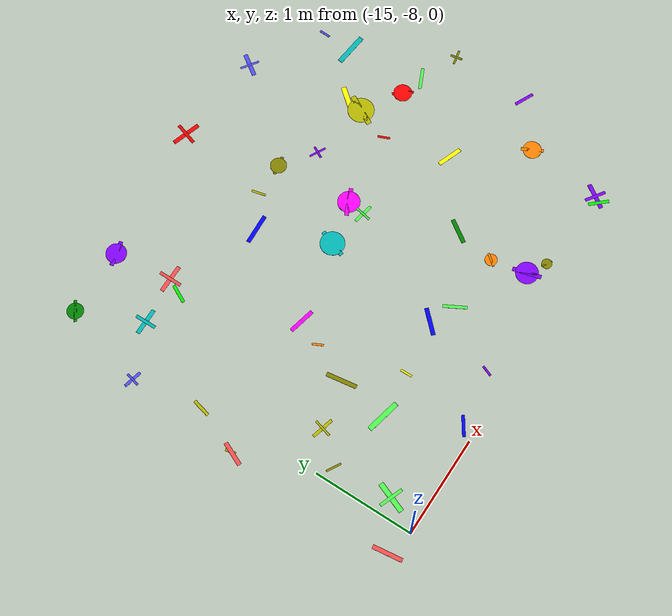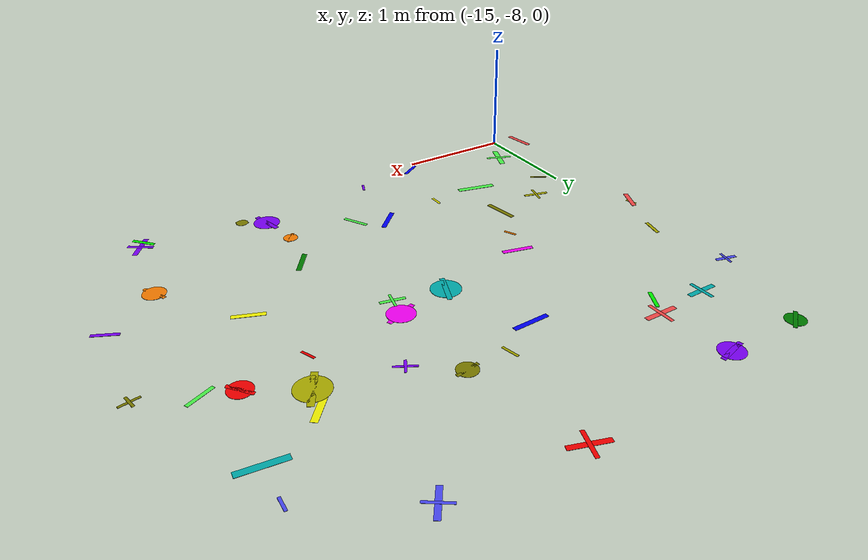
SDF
<sdf version="1.6">
 <world name="default">
  <model name="letter_E_31">
   <static>true</static>
   <pose>-14.82 -7.68 0.005 0 0 1.197</pose>
   <link name="link">
    <visual name="visual">
     <geometry><box><size>0.31 0.05 0.002</size></box></geometry>
     <material>
      <ambient>0.3 1.0 0.3 1</ambient>
      <diffuse>0.3 1.0 0.3 1</diffuse>
      <specular>0.1 0.1 0.1 1</specular>
     </material>
    </visual>
    <visual name="visual2">
     <pose>0 0 0.001 0 0 1.57</pose>
     <geometry><box><size>0.24 0.03 0.001</size></box></geometry>
     <material><ambient>0.3 1.0 0.3 1</ambient><diffuse>0.3 1.0 0.3 1</diffuse></material>
    </visual>
   </link>
  </model>
  <model name="letter_N_33">
   <static>true</static>
   <pose>-15.26 -7.92 0.006 0 0 4.839</pose>
   <link name="link">
    <visual name="visual">
     <geometry><box><size>0.29 0.04 0.002</size></box></geometry>
     <material>
      <ambient>1.0 0.3 0.3 1</ambient>
      <diffuse>1.0 0.3 0.3 1</diffuse>
      <specular>0.1 0.1 0.1 1</specular>
     </material>
    </visual>
   </link>
  </model>
  <model name="letter_F_34">
   <static>true</static>
   <pose>-14.62 -6.82 0.006 0 0 2.882</pose>
   <link name="link">
    <visual name="visual">
     <geometry><box><size>0.22 0.03 0.002</size></box></geometry>
     <material>
      <ambient>0.7 0.7 0.0 1</ambient>
      <diffuse>0.7 0.7 0.0 1</diffuse>
      <specular>0.1 0.1 0.1 1</specular>
     </material>
    </visual>
    <visual name="visual2">
     <pose>0 0 0.001 0 0 1.57</pose>
     <geometry><box><size>0.18 0.02 0.001</size></box></geometry>
     <material><ambient>0.7 0.7 0.0 1</ambient><diffuse>0.7 0.7 0.0 1</diffuse></material>
    </visual>
   </link>
  </model>
  <model name="letter_V_35">
   <static>true</static>
   <pose>-14.87 -7.10 0.007 0 0 5.749</pose>
   <link name="link">
    <visual name="visual">
     <geometry><box><size>0.15 0.02 0.002</size></box></geometry>
     <material>
      <ambient>0.5 0.5 0.0 1</ambient>
      <diffuse>0.5 0.5 0.0 1</diffuse>
      <specular>0.1 0.1 0.1 1</specular>
     </material>
    </visual>
   </link>
  </model>
  <model name="letter_Z_36">
   <static>true</static>
   <pose>-15.25 -6.24 0.005 0 0 1.819</pose>
   <link name="link">
    <visual name="visual">
     <geometry><box><size>0.10 0.02 0.002</size></box></geometry>
     <material>
      <ambient>0.7 0.7 0.0 1</ambient>
      <diffuse>0.7 0.7 0.0 1</diffuse>
      <specular>0.1 0.1 0.1 1</specular>
     </material>
    </visual>
   </link>
  </model>
  <model name="letter_U_37">
   <static>true</static>
   <pose>-15.26 -6.27 0.011 0 0 4.283</pose>
   <link name="link">
    <visual name="visual">
     <geometry><box><size>0.24 0.04 0.002</size></box></geometry>
     <material>
      <ambient>1.0 0.3 0.3 1</ambient>
      <diffuse>1.0 0.3 0.3 1</diffuse>
      <specular>0.1 0.1 0.1 1</specular>
     </material>
    </visual>
   </link>
  </model>
  <model name="letter_P_38">
   <static>true</static>
   <pose>-15.06 -5.79 0.004 0 0 1.325</pose>
   <link name="link">
    <visual name="visual">
     <geometry><box><size>0.18 0.03 0.002</size></box></geometry>
     <material>
      <ambient>0.7 0.7 0.0 1</ambient>
      <diffuse>0.7 0.7 0.0 1</diffuse>
      <specular>0.1 0.1 0.1 1</specular>
     </material>
    </visual>
   </link>
  </model>
  <model name="letter_L_39">
   <static>true</static>
   <pose>-15.18 -5.11 0.009 0 0 2.905</pose>
   <link name="link">
    <visual name="visual">
     <geometry><box><size>0.18 0.03 0.002</size></box></geometry>
     <material>
      <ambient>0.3 0.3 1.0 1</ambient>
      <diffuse>0.3 0.3 1.0 1</diffuse>
      <specular>0.1 0.1 0.1 1</specular>
     </material>
    </visual>
    <visual name="visual2">
     <pose>0 0 0.001 0 0 1.57</pose>
     <geometry><box><size>0.14 0.02 0.001</size></box></geometry>
     <material><ambient>0.3 0.3 1.0 1</ambient><diffuse>0.3 0.3 1.0 1</diffuse></material>
    </visual>
   </link>
  </model>
  <model name="letter_A_40">
   <static>true</static>
   <pose>-14.66 -4.89 0.006 0 0 0.012</pose>
   <link name="link">
    <visual name="visual">
     <geometry><box><size>0.26 0.04 0.002</size></box></geometry>
     <material>
      <ambient>0.0 0.7 0.7 1</ambient>
      <diffuse>0.0 0.7 0.7 1</diffuse>
      <specular>0.1 0.1 0.1 1</specular>
     </material>
    </visual>
    <visual name="visual2">
     <pose>0 0 0.001 0 0 1.57</pose>
     <geometry><box><size>0.21 0.03 0.001</size></box></geometry>
     <material><ambient>0.0 0.7 0.7 1</ambient><diffuse>0.0 0.7 0.7 1</diffuse></material>
    </visual>
   </link>
  </model>
  <model name="letter_Q_43">
   <static>true</static>
   <pose>-14.93 -4.28 0.006 0 0 0.631</pose>
   <link name="link">
    <visual name="visual">
     <geometry><box><size>0.21 0.03 0.002</size></box></geometry>
     <material>
      <ambient>0.0 0.5 0.0 1</ambient>
      <diffuse>0.0 0.5 0.0 1</diffuse>
      <specular>0.1 0.1 0.1 1</specular>
     </material>
    </visual>
    <visual name="visual2">
     <geometry><cylinder><radius>0.08</radius><length>0.002</length></cylinder></geometry>
     <material><ambient>0.0 0.5 0.0 1</ambient><diffuse>0.0 0.5 0.0 1</diffuse></material>
    </visual>
   </link>
  </model>
  <model name="letter_W_111">
   <static>true</static>
   <pose>-13.91 -7.88 0.012 0 0 3.731</pose>
   <link name="link">
    <visual name="visual">
     <geometry><box><size>0.20 0.03 0.002</size></box></geometry>
     <material>
      <ambient>0.0 0.0 1.0 1</ambient>
      <diffuse>0.0 0.0 1.0 1</diffuse>
      <specular>0.1 0.1 0.1 1</specular>
     </material>
    </visual>
   </link>
  </model>
  <model name="letter_M_113">
   <static>true</static>
   <pose>-14.15 -6.72 0.009 0 0 4.860</pose>
   <link name="link">
    <visual name="visual">
     <geometry><box><size>0.30 0.04 0.002</size></box></geometry>
     <material>
      <ambient>0.5 0.5 0.0 1</ambient>
      <diffuse>0.5 0.5 0.0 1</diffuse>
      <specular>0.1 0.1 0.1 1</specular>
     </material>
    </visual>
   </link>
  </model>
  <model name="letter_S_114">
   <static>true</static>
   <pose>-14.23 -7.22 0.008 0 0 2.916</pose>
   <link name="link">
    <visual name="visual">
     <geometry><box><size>0.34 0.05 0.002</size></box></geometry>
     <material>
      <ambient>0.3 1.0 0.3 1</ambient>
      <diffuse>0.3 1.0 0.3 1</diffuse>
      <specular>0.1 0.1 0.1 1</specular>
     </material>
    </visual>
   </link>
  </model>
  <model name="letter_D_115">
   <static>true</static>
   <pose>-13.77 -7.18 0.012 0 0 4.732</pose>
   <link name="link">
    <visual name="visual">
     <geometry><box><size>0.12 0.02 0.002</size></box></geometry>
     <material>
      <ambient>1.0 1.0 0.0 1</ambient>
      <diffuse>1.0 1.0 0.0 1</diffuse>
      <specular>0.1 0.1 0.1 1</specular>
     </material>
    </visual>
   </link>
  </model>
  <model name="letter_K_116">
   <static>true</static>
   <pose>-13.98 -6.35 0.010 0 0 5.159</pose>
   <link name="link">
    <visual name="visual">
     <geometry><box><size>0.11 0.02 0.002</size></box></geometry>
     <material>
      <ambient>1.0 0.5 0.0 1</ambient>
      <diffuse>1.0 0.5 0.0 1</diffuse>
      <specular>0.1 0.1 0.1 1</specular>
     </material>
    </visual>
   </link>
  </model>
  <model name="letter_Z_117">
   <static>true</static>
   <pose>-13.87 -6.10 0.005 0 0 2.912</pose>
   <link name="link">
    <visual name="visual">
     <geometry><box><size>0.26 0.04 0.002</size></box></geometry>
     <material>
      <ambient>1.0 0.0 1.0 1</ambient>
      <diffuse>1.0 0.0 1.0 1</diffuse>
      <specular>0.1 0.1 0.1 1</specular>
     </material>
    </visual>
   </link>
  </model>
  <model name="letter_I_118">
   <static>true</static>
   <pose>-14.19 -4.84 0.005 0 0 6.283</pose>
   <link name="link">
    <visual name="visual">
     <geometry><box><size>0.28 0.04 0.002</size></box></geometry>
     <material>
      <ambient>1.0 0.3 0.3 1</ambient>
      <diffuse>1.0 0.3 0.3 1</diffuse>
      <specular>0.1 0.1 0.1 1</specular>
     </material>
    </visual>
    <visual name="visual2">
     <pose>0 0 0.001 0 0 1.57</pose>
     <geometry><box><size>0.23 0.03 0.001</size></box></geometry>
     <material><ambient>1.0 0.3 0.3 1</ambient><diffuse>1.0 0.3 0.3 1</diffuse></material>
    </visual>
   </link>
  </model>
  <model name="letter_Z_119">
   <static>true</static>
   <pose>-14.27 -4.99 0.008 0 0 1.092</pose>
   <link name="link">
    <visual name="visual">
     <geometry><box><size>0.19 0.03 0.002</size></box></geometry>
     <material>
      <ambient>0.0 1.0 0.0 1</ambient>
      <diffuse>0.0 1.0 0.0 1</diffuse>
      <specular>0.1 0.1 0.1 1</specular>
     </material>
    </visual>
   </link>
  </model>
  <model name="letter_G_121">
   <static>true</static>
   <pose>-14.26 -4.27 0.013 0 0 3.391</pose>
   <link name="link">
    <visual name="visual">
     <geometry><box><size>0.25 0.04 0.002</size></box></geometry>
     <material>
      <ambient>0.5 0.0 1.0 1</ambient>
      <diffuse>0.5 0.0 1.0 1</diffuse>
      <specular>0.1 0.1 0.1 1</specular>
     </material>
    </visual>
    <visual name="visual2">
     <geometry><cylinder><radius>0.10</radius><length>0.002</length></cylinder></geometry>
     <material><ambient>0.5 0.0 1.0 1</ambient><diffuse>0.5 0.0 1.0 1</diffuse></material>
    </visual>
   </link>
  </model>
  <model name="letter_J_184">
   <static>true</static>
   <pose>-13.35 -7.79 0.004 0 0 4.335</pose>
   <link name="link">
    <visual name="visual">
     <geometry><box><size>0.11 0.02 0.002</size></box></geometry>
     <material>
      <ambient>0.5 0.0 1.0 1</ambient>
      <diffuse>0.5 0.0 1.0 1</diffuse>
      <specular>0.1 0.1 0.1 1</specular>
     </material>
    </visual>
   </link>
  </model>
  <model name="letter_K_185">
   <static>true</static>
   <pose>-13.23 -7.10 0.008 0 0 3.936</pose>
   <link name="link">
    <visual name="visual">
     <geometry><box><size>0.27 0.04 0.002</size></box></geometry>
     <material>
      <ambient>0.0 0.0 1.0 1</ambient>
      <diffuse>0.0 0.0 1.0 1</diffuse>
      <specular>0.1 0.1 0.1 1</specular>
     </material>
    </visual>
   </link>
  </model>
  <model name="letter_U_186">
   <static>true</static>
   <pose>-12.98 -7.22 0.008 0 0 5.213</pose>
   <link name="link">
    <visual name="visual">
     <geometry><box><size>0.23 0.03 0.002</size></box></geometry>
     <material>
      <ambient>0.3 1.0 0.3 1</ambient>
      <diffuse>0.3 1.0 0.3 1</diffuse>
      <specular>0.1 0.1 0.1 1</specular>
     </material>
    </visual>
   </link>
  </model>
  <model name="letter_G_187">
   <static>true</static>
   <pose>-12.63 -5.82 0.004 0 0 3.551</pose>
   <link name="link">
    <visual name="visual">
     <geometry><box><size>0.28 0.04 0.002</size></box></geometry>
     <material>
      <ambient>1.0 0.0 1.0 1</ambient>
      <diffuse>1.0 0.0 1.0 1</diffuse>
      <specular>0.1 0.1 0.1 1</specular>
     </material>
    </visual>
    <visual name="visual2">
     <geometry><cylinder><radius>0.11</radius><length>0.002</length></cylinder></geometry>
     <material><ambient>1.0 0.0 1.0 1</ambient><diffuse>1.0 0.0 1.0 1</diffuse></material>
    </visual>
   </link>
  </model>
  <model name="letter_G_188">
   <static>true</static>
   <pose>-13.07 -5.92 0.007 0 0 1.215</pose>
   <link name="link">
    <visual name="visual">
     <geometry><box><size>0.29 0.04 0.002</size></box></geometry>
     <material>
      <ambient>0.0 0.7 0.7 1</ambient>
      <diffuse>0.0 0.7 0.7 1</diffuse>
      <specular>0.1 0.1 0.1 1</specular>
     </material>
    </visual>
    <visual name="visual2">
     <geometry><cylinder><radius>0.12</radius><length>0.002</length></cylinder></geometry>
     <material><ambient>0.0 0.7 0.7 1</ambient><diffuse>0.0 0.7 0.7 1</diffuse></material>
    </visual>
   </link>
  </model>
  <model name="letter_F_189">
   <static>true</static>
   <pose>-12.66 -6.00 0.005 0 0 2.945</pose>
   <link name="link">
    <visual name="visual">
     <geometry><box><size>0.20 0.03 0.002</size></box></geometry>
     <material>
      <ambient>0.3 1.0 0.3 1</ambient>
      <diffuse>0.3 1.0 0.3 1</diffuse>
      <specular>0.1 0.1 0.1 1</specular>
     </material>
    </visual>
    <visual name="visual2">
     <pose>0 0 0.001 0 0 1.57</pose>
     <geometry><box><size>0.16 0.02 0.001</size></box></geometry>
     <material><ambient>0.3 1.0 0.3 1</ambient><diffuse>0.3 1.0 0.3 1</diffuse></material>
    </visual>
   </link>
  </model>
  <model name="letter_X_190">
   <static>true</static>
   <pose>-13.02 -5.05 0.009 0 0 4.944</pose>
   <link name="link">
    <visual name="visual">
     <geometry><box><size>0.14 0.02 0.002</size></box></geometry>
     <material>
      <ambient>0.7 0.7 0.0 1</ambient>
      <diffuse>0.7 0.7 0.0 1</diffuse>
      <specular>0.1 0.1 0.1 1</specular>
     </material>
    </visual>
   </link>
  </model>
  <model name="letter_G_191">
   <static>true</static>
   <pose>-12.68 -5.05 0.005 0 0 3.312</pose>
   <link name="link">
    <visual name="visual">
     <geometry><box><size>0.19 0.03 0.002</size></box></geometry>
     <material>
      <ambient>0.5 0.5 0.0 1</ambient>
      <diffuse>0.5 0.5 0.0 1</diffuse>
      <specular>0.1 0.1 0.1 1</specular>
     </material>
    </visual>
    <visual name="visual2">
     <geometry><cylinder><radius>0.08</radius><length>0.002</length></cylinder></geometry>
     <material><ambient>0.5 0.5 0.0 1</ambient><diffuse>0.5 0.5 0.0 1</diffuse></material>
    </visual>
   </link>
  </model>
  <model name="letter_Y_192">
   <static>true</static>
   <pose>-13.34 -5.24 0.011 0 0 0.045</pose>
   <link name="link">
    <visual name="visual">
     <geometry><box><size>0.30 0.04 0.002</size></box></geometry>
     <material>
      <ambient>0.0 0.0 1.0 1</ambient>
      <diffuse>0.0 0.0 1.0 1</diffuse>
      <specular>0.1 0.1 0.1 1</specular>
     </material>
    </visual>
   </link>
  </model>
  <model name="letter_A_194">
   <static>true</static>
   <pose>-12.89 -4.12 0.011 0 0 2.823</pose>
   <link name="link">
    <visual name="visual">
     <geometry><box><size>0.29 0.04 0.002</size></box></geometry>
     <material>
      <ambient>1.0 0.0 0.0 1</ambient>
      <diffuse>1.0 0.0 0.0 1</diffuse>
      <specular>0.1 0.1 0.1 1</specular>
     </material>
    </visual>
    <visual name="visual2">
     <pose>0 0 0.001 0 0 1.57</pose>
     <geometry><box><size>0.23 0.03 0.001</size></box></geometry>
     <material><ambient>1.0 0.0 0.0 1</ambient><diffuse>1.0 0.0 0.0 1</diffuse></material>
    </visual>
   </link>
  </model>
  <model name="letter_Q_262">
   <static>true</static>
   <pose>-12.15 -7.72 0.008 0 0 2.540</pose>
   <link name="link">
    <visual name="visual">
     <geometry><box><size>0.11 0.02 0.002</size></box></geometry>
     <material>
      <ambient>0.5 0.5 0.0 1</ambient>
      <diffuse>0.5 0.5 0.0 1</diffuse>
      <specular>0.1 0.1 0.1 1</specular>
     </material>
    </visual>
    <visual name="visual2">
     <geometry><cylinder><radius>0.05</radius><length>0.002</length></cylinder></geometry>
     <material><ambient>0.5 0.5 0.0 1</ambient><diffuse>0.5 0.5 0.0 1</diffuse></material>
    </visual>
   </link>
  </model>
  <model name="letter_G_263">
   <static>true</static>
   <pose>-12.33 -7.61 0.009 0 0 1.829</pose>
   <link name="link">
    <visual name="visual">
     <geometry><box><size>0.28 0.04 0.002</size></box></geometry>
     <material>
      <ambient>0.5 0.0 1.0 1</ambient>
      <diffuse>0.5 0.0 1.0 1</diffuse>
      <specular>0.1 0.1 0.1 1</specular>
     </material>
    </visual>
    <visual name="visual2">
     <geometry><cylinder><radius>0.11</radius><length>0.002</length></cylinder></geometry>
     <material><ambient>0.5 0.0 1.0 1</ambient><diffuse>0.5 0.0 1.0 1</diffuse></material>
    </visual>
   </link>
  </model>
  <model name="letter_G_264">
   <static>true</static>
   <pose>-12.40 -7.26 0.006 0 0 4.035</pose>
   <link name="link">
    <visual name="visual">
     <geometry><box><size>0.14 0.02 0.002</size></box></geometry>
     <material>
      <ambient>1.0 0.5 0.0 1</ambient>
      <diffuse>1.0 0.5 0.0 1</diffuse>
      <specular>0.1 0.1 0.1 1</specular>
     </material>
    </visual>
    <visual name="visual2">
     <geometry><cylinder><radius>0.06</radius><length>0.002</length></cylinder></geometry>
     <material><ambient>1.0 0.5 0.0 1</ambient><diffuse>1.0 0.5 0.0 1</diffuse></material>
    </visual>
   </link>
  </model>
  <model name="letter_X_265">
   <static>true</static>
   <pose>-12.32 -6.85 0.005 0 0 0.969</pose>
   <link name="link">
    <visual name="visual">
     <geometry><box><size>0.25 0.04 0.002</size></box></geometry>
     <material>
      <ambient>0.0 0.5 0.0 1</ambient>
      <diffuse>0.0 0.5 0.0 1</diffuse>
      <specular>0.1 0.1 0.1 1</specular>
     </material>
    </visual>
   </link>
  </model>
  <model name="letter_J_266">
   <static>true</static>
   <pose>-11.71 -6.38 0.003 0 0 2.779</pose>
   <link name="link">
    <visual name="visual">
     <geometry><box><size>0.25 0.04 0.002</size></box></geometry>
     <material>
      <ambient>1.0 1.0 0.0 1</ambient>
      <diffuse>1.0 1.0 0.0 1</diffuse>
      <specular>0.1 0.1 0.1 1</specular>
     </material>
    </visual>
   </link>
  </model>
  <model name="letter_Z_267">
   <static>true</static>
   <pose>-11.88 -5.74 0.003 0 0 5.107</pose>
   <link name="link">
    <visual name="visual">
     <geometry><box><size>0.12 0.02 0.002</size></box></geometry>
     <material>
      <ambient>1.0 0.0 0.0 1</ambient>
      <diffuse>1.0 0.0 0.0 1</diffuse>
      <specular>0.1 0.1 0.1 1</specular>
     </material>
    </visual>
   </link>
  </model>
  <model name="letter_M_268">
   <static>true</static>
   <pose>-11.75 -5.25 0.005 0 0 4.010</pose>
   <link name="link">
    <visual name="visual">
     <geometry><box><size>0.33 0.05 0.002</size></box></geometry>
     <material>
      <ambient>1.0 1.0 0.0 1</ambient>
      <diffuse>1.0 1.0 0.0 1</diffuse>
      <specular>0.1 0.1 0.1 1</specular>
     </material>
    </visual>
   </link>
  </model>
  <model name="letter_Q_269">
   <static>true</static>
   <pose>-11.76 -5.40 0.011 0 0 4.213</pose>
   <link name="link">
    <visual name="visual">
     <geometry><box><size>0.33 0.05 0.002</size></box></geometry>
     <material>
      <ambient>0.7 0.7 0.0 1</ambient>
      <diffuse>0.7 0.7 0.0 1</diffuse>
      <specular>0.1 0.1 0.1 1</specular>
     </material>
    </visual>
    <visual name="visual2">
     <geometry><cylinder><radius>0.13</radius><length>0.002</length></cylinder></geometry>
     <material><ambient>0.7 0.7 0.0 1</ambient><diffuse>0.7 0.7 0.0 1</diffuse></material>
    </visual>
   </link>
  </model>
  <model name="letter_T_270">
   <static>true</static>
   <pose>-12.36 -5.29 0.006 0 0 5.789</pose>
   <link name="link">
    <visual name="visual">
     <geometry><box><size>0.17 0.02 0.002</size></box></geometry>
     <material>
      <ambient>0.5 0.0 1.0 1</ambient>
      <diffuse>0.5 0.0 1.0 1</diffuse>
      <specular>0.1 0.1 0.1 1</specular>
     </material>
    </visual>
    <visual name="visual2">
     <pose>0 0 0.001 0 0 1.57</pose>
     <geometry><box><size>0.13 0.02 0.001</size></box></geometry>
     <material><ambient>0.5 0.0 1.0 1</ambient><diffuse>0.5 0.0 1.0 1</diffuse></material>
    </visual>
   </link>
  </model>
  <model name="letter_T_273">
   <static>true</static>
   <pose>-11.94 -4.22 0.008 0 0 4.104</pose>
   <link name="link">
    <visual name="visual">
     <geometry><box><size>0.24 0.04 0.002</size></box></geometry>
     <material>
      <ambient>0.3 0.3 1.0 1</ambient>
      <diffuse>0.3 0.3 1.0 1</diffuse>
      <specular>0.1 0.1 0.1 1</specular>
     </material>
    </visual>
    <visual name="visual2">
     <pose>0 0 0.001 0 0 1.57</pose>
     <geometry><box><size>0.19 0.02 0.001</size></box></geometry>
     <material><ambient>0.3 0.3 1.0 1</ambient><diffuse>0.3 0.3 1.0 1</diffuse></material>
    </visual>
   </link>
  </model>
  <model name="letter_E_338">
   <static>true</static>
   <pose>-11.31 -7.76 0.009 0 0 4.112</pose>
   <link name="link">
    <visual name="visual">
     <geometry><box><size>0.26 0.04 0.002</size></box></geometry>
     <material>
      <ambient>0.5 0.0 1.0 1</ambient>
      <diffuse>0.5 0.0 1.0 1</diffuse>
      <specular>0.1 0.1 0.1 1</specular>
     </material>
    </visual>
    <visual name="visual2">
     <pose>0 0 0.001 0 0 1.57</pose>
     <geometry><box><size>0.21 0.03 0.001</size></box></geometry>
     <material><ambient>0.5 0.0 1.0 1</ambient><diffuse>0.5 0.0 1.0 1</diffuse></material>
    </visual>
   </link>
  </model>
  <model name="letter_Y_339">
   <static>true</static>
   <pose>-11.35 -7.82 0.010 0 0 2.299</pose>
   <link name="link">
    <visual name="visual">
     <geometry><box><size>0.20 0.03 0.002</size></box></geometry>
     <material>
      <ambient>0.0 1.0 0.0 1</ambient>
      <diffuse>0.0 1.0 0.0 1</diffuse>
      <specular>0.1 0.1 0.1 1</specular>
     </material>
    </visual>
   </link>
  </model>
  <model name="letter_S_341">
   <static>true</static>
   <pose>-10.80 -6.67 0.010 0 0 2.697</pose>
   <link name="link">
    <visual name="visual">
     <geometry><box><size>0.20 0.03 0.002</size></box></geometry>
     <material>
      <ambient>0.5 0.0 1.0 1</ambient>
      <diffuse>0.5 0.0 1.0 1</diffuse>
      <specular>0.1 0.1 0.1 1</specular>
     </material>
    </visual>
   </link>
  </model>
  <model name="letter_Q_342">
   <static>true</static>
   <pose>-11.22 -7.01 0.010 0 0 2.040</pose>
   <link name="link">
    <visual name="visual">
     <geometry><box><size>0.22 0.03 0.002</size></box></geometry>
     <material>
      <ambient>1.0 0.5 0.0 1</ambient>
      <diffuse>1.0 0.5 0.0 1</diffuse>
      <specular>0.1 0.1 0.1 1</specular>
     </material>
    </visual>
    <visual name="visual2">
     <geometry><cylinder><radius>0.09</radius><length>0.002</length></cylinder></geometry>
     <material><ambient>1.0 0.5 0.0 1</ambient><diffuse>1.0 0.5 0.0 1</diffuse></material>
    </visual>
   </link>
  </model>
  <model name="letter_H_343">
   <static>true</static>
   <pose>-10.77 -5.88 0.012 0 0 3.333</pose>
   <link name="link">
    <visual name="visual">
     <geometry><box><size>0.15 0.02 0.002</size></box></geometry>
     <material>
      <ambient>0.5 0.5 0.0 1</ambient>
      <diffuse>0.5 0.5 0.0 1</diffuse>
      <specular>0.1 0.1 0.1 1</specular>
     </material>
    </visual>
    <visual name="visual2">
     <pose>0 0 0.001 0 0 1.57</pose>
     <geometry><box><size>0.12 0.02 0.001</size></box></geometry>
     <material><ambient>0.5 0.5 0.0 1</ambient><diffuse>0.5 0.5 0.0 1</diffuse></material>
    </visual>
   </link>
  </model>
  <model name="letter_G_344">
   <static>true</static>
   <pose>-11.38 -5.64 0.004 0 0 5.374</pose>
   <link name="link">
    <visual name="visual">
     <geometry><box><size>0.21 0.03 0.002</size></box></geometry>
     <material>
      <ambient>1.0 0.0 0.0 1</ambient>
      <diffuse>1.0 0.0 0.0 1</diffuse>
      <specular>0.1 0.1 0.1 1</specular>
     </material>
    </visual>
    <visual name="visual2">
     <geometry><cylinder><radius>0.09</radius><length>0.002</length></cylinder></geometry>
     <material><ambient>1.0 0.0 0.0 1</ambient><diffuse>1.0 0.0 0.0 1</diffuse></material>
    </visual>
   </link>
  </model>
  <model name="letter_U_345">
   <static>true</static>
   <pose>-11.15 -5.71 0.005 0 0 0.422</pose>
   <link name="link">
    <visual name="visual">
     <geometry><box><size>0.22 0.03 0.002</size></box></geometry>
     <material>
      <ambient>0.3 1.0 0.3 1</ambient>
      <diffuse>0.3 1.0 0.3 1</diffuse>
      <specular>0.1 0.1 0.1 1</specular>
     </material>
    </visual>
   </link>
  </model>
  <model name="letter_X_346">
   <static>true</static>
   <pose>-11.26 -4.96 0.005 0 0 6.169</pose>
   <link name="link">
    <visual name="visual">
     <geometry><box><size>0.33 0.05 0.002</size></box></geometry>
     <material>
      <ambient>0.0 0.7 0.7 1</ambient>
      <diffuse>0.0 0.7 0.7 1</diffuse>
      <specular>0.1 0.1 0.1 1</specular>
     </material>
    </visual>
   </link>
  </model>
  <model name="letter_Z_347">
   <static>true</static>
   <pose>-11.25 -4.65 0.003 0 0 4.681</pose>
   <link name="link">
    <visual name="visual">
     <geometry><box><size>0.11 0.02 0.002</size></box></geometry>
     <material>
      <ambient>0.3 0.3 1.0 1</ambient>
      <diffuse>0.3 0.3 1.0 1</diffuse>
      <specular>0.1 0.1 0.1 1</specular>
     </material>
    </visual>
   </link>
  </model>
 </world>
</sdf>
